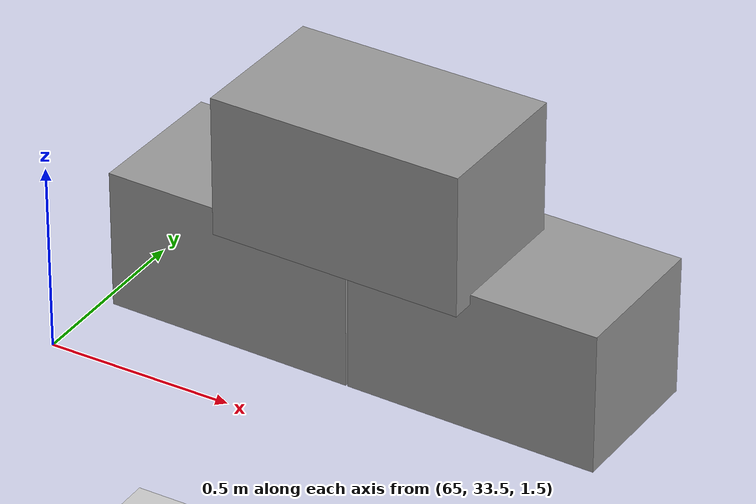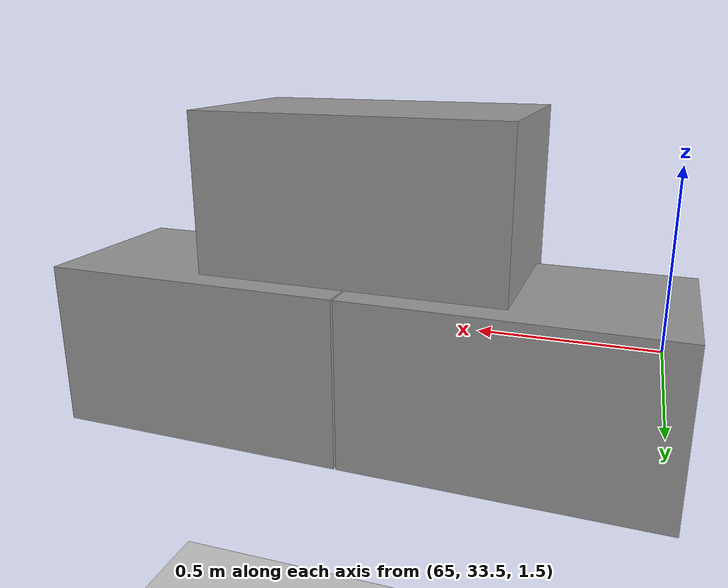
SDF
<sdf version="1.7">
 <world name="default">
  <model name="ground_plane">
   <static>1</static>
   <link name="link">
    <collision name="collision">
     <geometry><plane><normal>0 0 1</normal><size>100 100</size></plane></geometry>
     <surface>
      <contact><collide_bitmask>65535</collide_bitmask></contact>
      <friction><ode><mu>100</mu><mu2>50</mu2></ode></friction>
     </surface>
    </collision>
    <visual name="visual">
     <cast_shadows>0</cast_shadows>
     <geometry><plane><normal>0 0 1</normal><size>100 100</size></plane></geometry>
     <material>
      <script><uri>file://media/materials/scripts/gazebo.material</uri><name>Gazebo/Grey</name></script>
     </material>
    </visual>
   </link>
  </model>
  <model name="Add_Box_clone_clone_3_clone_12">
   <link name="link">
    <inertial>
     <mass>1</mass>
     <inertia>
      <ixx>0.166667</ixx>
      <ixy>0</ixy>
      <ixz>0</ixz>
      <iyy>0.166667</iyy>
      <iyz>0</iyz>
      <izz>0.166667</izz>
     </inertia>
    </inertial>
    <kinematic>1</kinematic>
    <gravity>0</gravity>
    <visual name="visual">
     <geometry><box><size>0.686 0.406 0.381</size></box></geometry>
     <material>
      <script><name>Gazebo/Grey</name><uri>file://media/materials/scripts/gazebo.material</uri></script>
      <shader type="pixel"><normal_map>__default__</normal_map></shader>
      <ambient>0.3 0.3 0.3 1</ambient>
      <diffuse>0.7 0.7 0.7 1</diffuse>
      <specular>0.01 0.01 0.01 1</specular>
      <emissive>0 0 0 1</emissive>
     </material>
    </visual>
    <collision name="collision">
     <geometry><box><size>1 1 1</size></box></geometry>
     <surface>
      <friction>
       <ode><mu>1</mu><mu2>1</mu2><fdir1>0 0 0</fdir1><slip1>0</slip1><slip2>0</slip2></ode>
       <torsional>
        <coefficient>1</coefficient>
        <patch_radius>0</patch_radius>
        <surface_radius>0</surface_radius>
        <use_patch_radius>1</use_patch_radius>
        <ode><slip>0</slip></ode>
       </torsional>
      </friction>
      <bounce><restitution_coefficient>0</restitution_coefficient><threshold>1e+06</threshold></bounce>
      <contact>
       <collide_without_contact>0</collide_without_contact>
       <collide_without_contact_bitmask>1</collide_without_contact_bitmask>
       <collide_bitmask>1</collide_bitmask>
       <ode>
        <soft_cfm>0</soft_cfm>
        <soft_erp>0.2</soft_erp>
        <kp>1e+13</kp>
        <kd>1</kd>
        <max_vel>0.01</max_vel>
        <min_depth>0</min_depth>
       </ode>
       <bullet>
        <split_impulse>1</split_impulse>
        <split_impulse_penetration_threshold>-0.01</split_impulse_penetration_threshold>
        <soft_cfm>0</soft_cfm>
        <soft_erp>0.2</soft_erp>
        <kp>1e+13</kp>
        <kd>1</kd>
       </bullet>
      </contact>
     </surface>
    </collision>
   </link>
   <link name="link_clone">
    <inertial>
     <mass>1</mass>
     <inertia>
      <ixx>0.166667</ixx>
      <ixy>0</ixy>
      <ixz>0</ixz>
      <iyy>0.166667</iyy>
      <iyz>0</iyz>
      <izz>0.166667</izz>
     </inertia>
    </inertial>
    <pose>-0.343354 -0.063316 0.354303 1e-05 -0 0</pose>
    <gravity>0</gravity>
    <visual name="visual">
     <geometry><box><size>0.686 0.406 0.381</size></box></geometry>
     <material>
      <script><name>Gazebo/Grey</name><uri>file://media/materials/scripts/gazebo.material</uri></script>
      <shader type="pixel"><normal_map>__default__</normal_map></shader>
      <ambient>0.3 0.3 0.3 1</ambient>
      <diffuse>0.7 0.7 0.7 1</diffuse>
      <specular>0.01 0.01 0.01 1</specular>
      <emissive>0 0 0 1</emissive>
     </material>
    </visual>
    <collision name="collision">
     <geometry><box><size>1 1 1</size></box></geometry>
     <surface>
      <friction>
       <ode><mu>1</mu><mu2>1</mu2><fdir1>0 0 0</fdir1><slip1>0</slip1><slip2>0</slip2></ode>
       <torsional>
        <coefficient>1</coefficient>
        <patch_radius>0</patch_radius>
        <surface_radius>0</surface_radius>
        <use_patch_radius>1</use_patch_radius>
        <ode><slip>0</slip></ode>
       </torsional>
      </friction>
      <bounce><restitution_coefficient>0</restitution_coefficient><threshold>1e+06</threshold></bounce>
      <contact>
       <collide_without_contact>0</collide_without_contact>
       <collide_without_contact_bitmask>1</collide_without_contact_bitmask>
       <collide_bitmask>1</collide_bitmask>
       <ode>
        <soft_cfm>0</soft_cfm>
        <soft_erp>0.2</soft_erp>
        <kp>1e+13</kp>
        <kd>1</kd>
        <max_vel>0.01</max_vel>
        <min_depth>0</min_depth>
       </ode>
       <bullet>
        <split_impulse>1</split_impulse>
        <split_impulse_penetration_threshold>-0.01</split_impulse_penetration_threshold>
        <soft_cfm>0</soft_cfm>
        <soft_erp>0.2</soft_erp>
        <kp>1e+13</kp>
        <kd>1</kd>
       </bullet>
      </contact>
     </surface>
    </collision>
   </link>
   <link name="link_clone_clone">
    <inertial>
     <mass>1</mass>
     <inertia>
      <ixx>0.166667</ixx>
      <ixy>0</ixy>
      <ixz>0</ixz>
      <iyy>0.166667</iyy>
      <iyz>0</iyz>
      <izz>0.166667</izz>
     </inertia>
    </inertial>
    <pose>-0.690786 -0.000183 -1e-05 2e-05 -0 0</pose>
    <gravity>0</gravity>
    <visual name="visual">
     <geometry><box><size>0.686 0.406 0.381</size></box></geometry>
     <material>
      <script><name>Gazebo/Grey</name><uri>file://media/materials/scripts/gazebo.material</uri></script>
      <shader type="pixel"><normal_map>__default__</normal_map></shader>
      <ambient>0.3 0.3 0.3 1</ambient>
      <diffuse>0.7 0.7 0.7 1</diffuse>
      <specular>0.01 0.01 0.01 1</specular>
      <emissive>0 0 0 1</emissive>
     </material>
    </visual>
    <collision name="collision">
     <geometry><box><size>1 1 1</size></box></geometry>
     <surface>
      <friction>
       <ode><mu>1</mu><mu2>1</mu2><fdir1>0 0 0</fdir1><slip1>0</slip1><slip2>0</slip2></ode>
       <torsional>
        <coefficient>1</coefficient>
        <patch_radius>0</patch_radius>
        <surface_radius>0</surface_radius>
        <use_patch_radius>1</use_patch_radius>
        <ode><slip>0</slip></ode>
       </torsional>
      </friction>
      <bounce><restitution_coefficient>0</restitution_coefficient><threshold>1e+06</threshold></bounce>
      <contact>
       <collide_without_contact>0</collide_without_contact>
       <collide_without_contact_bitmask>1</collide_without_contact_bitmask>
       <collide_bitmask>1</collide_bitmask>
       <ode>
        <soft_cfm>0</soft_cfm>
        <soft_erp>0.2</soft_erp>
        <kp>1e+13</kp>
        <kd>1</kd>
        <max_vel>0.01</max_vel>
        <min_depth>0</min_depth>
       </ode>
       <bullet>
        <split_impulse>1</split_impulse>
        <split_impulse_penetration_threshold>-0.01</split_impulse_penetration_threshold>
        <soft_cfm>0</soft_cfm>
        <soft_erp>0.2</soft_erp>
        <kp>1e+13</kp>
        <kd>1</kd>
       </bullet>
      </contact>
     </surface>
    </collision>
   </link>
   <static>0</static>
   <pose>66 34 1.61518 0 0 -0.026352</pose>
  </model>
 </world>
</sdf>
